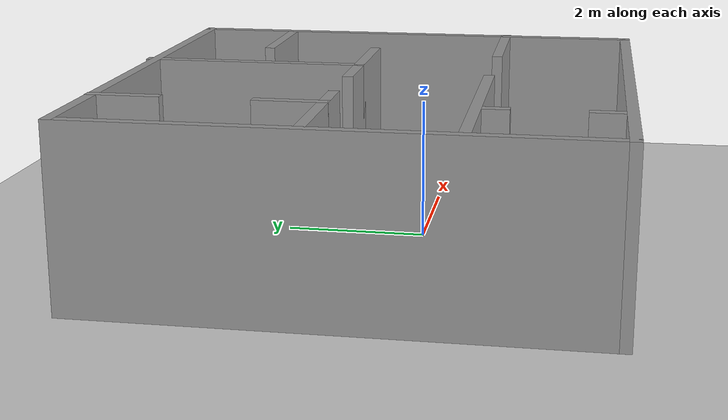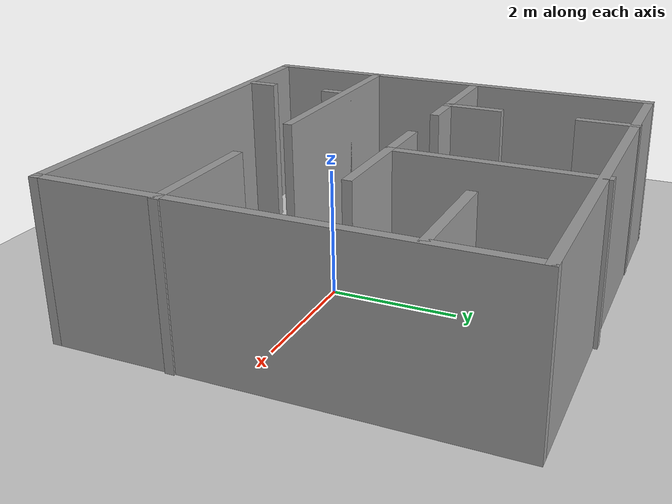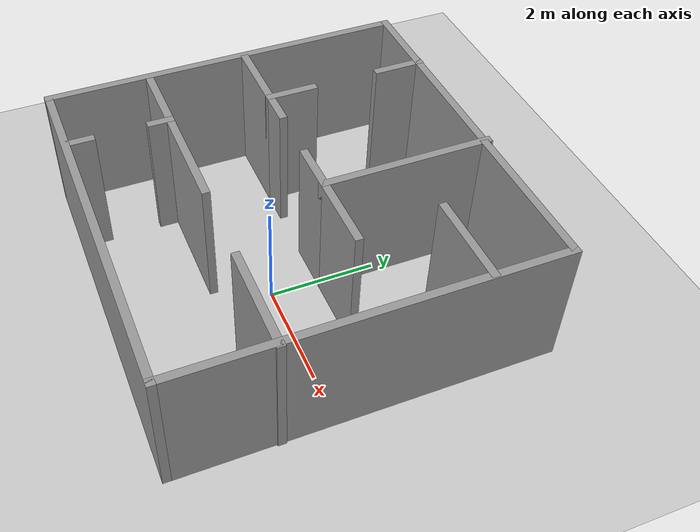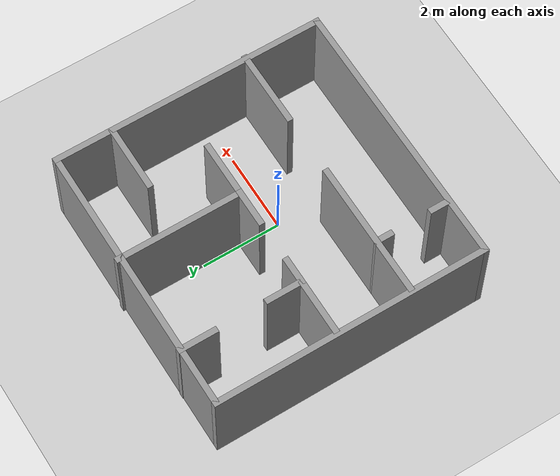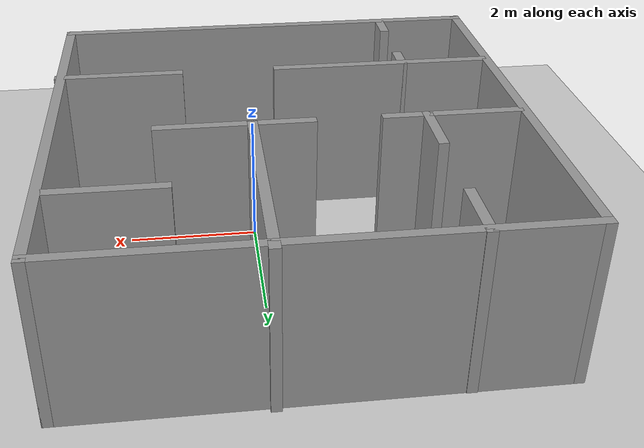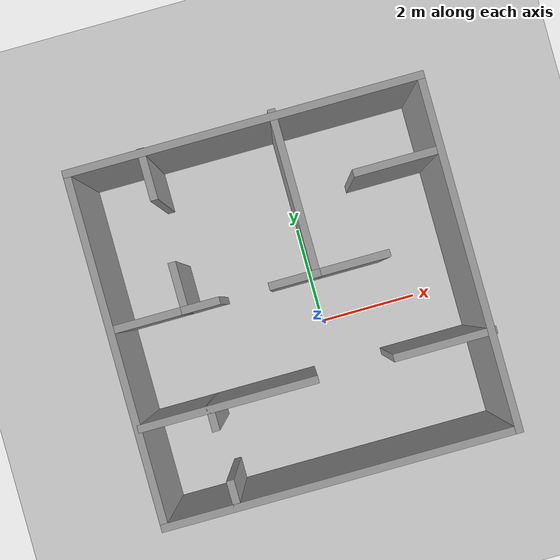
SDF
<sdf version="1.7">
 <world name="default">
  <light name="sun" type="directional">
   <pose>0 0 10 0 -0 0</pose>
   <diffuse>0.8 0.8 0.8 1</diffuse>
   <specular>0.2 0.2 0.2 1</specular>
   <attenuation>
    <range>1000</range>
    <constant>0.9</constant>
    <linear>0.01</linear>
    <quadratic>0.001</quadratic>
   </attenuation>
   <direction>-0.5 0.1 -0.9</direction>
   <spot><inner_angle>0</inner_angle><outer_angle>0</outer_angle><falloff>0</falloff></spot>
  </light>
  <model name="ground_plane">
   <static>1</static>
   <link name="link">
    <collision name="collision">
     <geometry><plane><normal>0 0 1</normal><size>100 100</size></plane></geometry>
     <surface>
      <contact><collide_bitmask>65535</collide_bitmask></contact>
      <friction><ode><mu>100</mu><mu2>50</mu2></ode></friction>
     </surface>
    </collision>
    <visual name="visual">
     <cast_shadows>0</cast_shadows>
     <geometry><plane><normal>0 0 1</normal><size>100 100</size></plane></geometry>
     <material>
      <script><uri>file://media/materials/scripts/gazebo.material</uri><name>Gazebo/Grey</name></script>
     </material>
    </visual>
   </link>
  </model>
  <gravity>0 0 -9.8</gravity>
  <magnetic_field>6e-06 2.3e-05 -4.2e-05</magnetic_field>
  <atmosphere type="adiabatic"/>
  <physics type="ode">
   <max_step_size>0.001</max_step_size>
   <real_time_factor>1</real_time_factor>
   <real_time_update_rate>1000</real_time_update_rate>
  </physics>
  <scene><ambient>0.4 0.4 0.4 1</ambient><background>0.7 0.7 0.7 1</background><shadows>1</shadows></scene>
  <spherical_coordinates>
   <surface_model>EARTH_WGS84</surface_model>
   <latitude_deg>0</latitude_deg>
   <longitude_deg>0</longitude_deg>
   <elevation>0</elevation>
   <heading_deg>0</heading_deg>
  </spherical_coordinates>
  <model name="maze8">
   <pose>-0.489709 0.59488 0 0 -0 0</pose>
   <link name="Wall_0">
    <collision name="Wall_0_Collision">
     <geometry><box><size>7 0.15 2.5</size></box></geometry>
     <pose>0 0 1.25 0 -0 0</pose>
    </collision>
    <visual name="Wall_0_Visual">
     <pose>0 0 1.25 0 -0 0</pose>
     <geometry><box><size>7 0.15 2.5</size></box></geometry>
     <material>
      <script><uri>file://media/materials/scripts/gazebo.material</uri><name>Gazebo/Grey</name></script>
      <ambient>1 1 1 1</ambient>
     </material>
     <meta><layer>0</layer></meta>
    </visual>
    <pose>-0.013968 3.39435 0 0 -0 0</pose>
   </link>
   <link name="Wall_1">
    <collision name="Wall_1_Collision">
     <geometry><box><size>7 0.15 2.5</size></box></geometry>
     <pose>0 0 1.25 0 -0 0</pose>
    </collision>
    <visual name="Wall_1_Visual">
     <pose>0 0 1.25 0 -0 0</pose>
     <geometry><box><size>7 0.15 2.5</size></box></geometry>
     <material>
      <script><uri>file://media/materials/scripts/gazebo.material</uri><name>Gazebo/Grey</name></script>
      <ambient>1 1 1 1</ambient>
     </material>
     <meta><layer>0</layer></meta>
    </visual>
    <pose>3.41103 -0.030649 0 0 -0 -1.5708</pose>
   </link>
   <link name="Wall_11">
    <collision name="Wall_11_Collision">
     <geometry><box><size>0.75 0.15 2.5</size></box></geometry>
     <pose>0 0 1.25 0 -0 0</pose>
    </collision>
    <visual name="Wall_11_Visual">
     <pose>0 0 1.25 0 -0 0</pose>
     <geometry><box><size>0.75 0.15 2.5</size></box></geometry>
     <material>
      <script><uri>file://media/materials/scripts/gazebo.material</uri><name>Gazebo/Grey</name></script>
      <ambient>1 1 1 1</ambient>
     </material>
     <meta><layer>0</layer></meta>
    </visual>
    <pose>-1.69092 0.355649 0 0 -0 0</pose>
   </link>
   <link name="Wall_13">
    <collision name="Wall_13_Collision">
     <geometry><box><size>1 0.15 2.5</size></box></geometry>
     <pose>0 0 1.25 0 -0 0</pose>
    </collision>
    <visual name="Wall_13_Visual">
     <pose>0 0 1.25 0 -0 0</pose>
     <geometry><box><size>1 0.15 2.5</size></box></geometry>
     <material>
      <script><uri>file://media/materials/scripts/gazebo.material</uri><name>Gazebo/Grey</name></script>
      <ambient>1 1 1 1</ambient>
     </material>
     <meta><layer>0</layer></meta>
    </visual>
    <pose>0.134082 0.355649 0 0 -0 0</pose>
   </link>
   <link name="Wall_14">
    <collision name="Wall_14_Collision">
     <geometry><box><size>3.25 0.15 2.5</size></box></geometry>
     <pose>0 0 1.25 0 -0 0</pose>
    </collision>
    <visual name="Wall_14_Visual">
     <pose>0 0 1.25 0 -0 0</pose>
     <geometry><box><size>3.25 0.15 2.5</size></box></geometry>
     <material>
      <script><uri>file://media/materials/scripts/gazebo.material</uri><name>Gazebo/Grey</name></script>
      <ambient>1 1 1 1</ambient>
     </material>
     <meta><layer>0</layer></meta>
    </visual>
    <pose>0.559082 1.90565 0 0 -0 1.5708</pose>
   </link>
   <link name="Wall_16">
    <collision name="Wall_16_Collision">
     <geometry><box><size>1.5 0.15 2.5</size></box></geometry>
     <pose>0 0 1.25 0 -0 0</pose>
    </collision>
    <visual name="Wall_16_Visual">
     <pose>0 0 1.25 0 -0 0</pose>
     <geometry><box><size>1.5 0.15 2.5</size></box></geometry>
     <material>
      <script><uri>file://media/materials/scripts/gazebo.material</uri><name>Gazebo/Grey</name></script>
      <ambient>1 1 1 1</ambient>
     </material>
     <meta><layer>0</layer></meta>
    </visual>
    <pose>1.23408 0.355649 0 0 -0 0</pose>
   </link>
   <link name="Wall_19">
    <collision name="Wall_19_Collision">
     <geometry><box><size>1.75 0.15 2.5</size></box></geometry>
     <pose>0 0 1.25 0 -0 0</pose>
    </collision>
    <visual name="Wall_19_Visual">
     <pose>0 0 1.25 0 -0 0</pose>
     <geometry><box><size>1.75 0.15 2.5</size></box></geometry>
     <material>
      <script><uri>file://media/materials/scripts/gazebo.material</uri><name>Gazebo/Grey</name></script>
      <ambient>1 1 1 1</ambient>
     </material>
     <meta><layer>0</layer></meta>
    </visual>
    <pose>2.58804 1.96473 0 0 -0 0</pose>
   </link>
   <link name="Wall_2">
    <collision name="Wall_2_Collision">
     <geometry><box><size>7 0.15 2.5</size></box></geometry>
     <pose>0 0 1.25 0 -0 0</pose>
    </collision>
    <visual name="Wall_2_Visual">
     <pose>0 0 1.25 0 -0 0</pose>
     <geometry><box><size>7 0.15 2.5</size></box></geometry>
     <material>
      <script><uri>file://media/materials/scripts/gazebo.material</uri><name>Gazebo/Grey</name></script>
      <ambient>1 1 1 1</ambient>
     </material>
     <meta><layer>0</layer></meta>
    </visual>
    <pose>-0.013968 -3.45565 0 0 -0 3.14159</pose>
   </link>
   <link name="Wall_22">
    <collision name="Wall_22_Collision">
     <geometry><box><size>3.5 0.15 2.5</size></box></geometry>
     <pose>0 0 1.25 0 -0 0</pose>
    </collision>
    <visual name="Wall_22_Visual">
     <pose>0 0 1.25 0 -0 0</pose>
     <geometry><box><size>3.5 0.15 2.5</size></box></geometry>
     <material>
      <script><uri>file://media/materials/scripts/gazebo.material</uri><name>Gazebo/Grey</name></script>
      <ambient>1 1 1 1</ambient>
     </material>
     <meta><layer>0</layer></meta>
    </visual>
    <pose>-1.68603 -1.55514 0 0 -0 0</pose>
   </link>
   <link name="Wall_24">
    <collision name="Wall_24_Collision">
     <geometry><box><size>2 0.15 2.5</size></box></geometry>
     <pose>0 0 1.25 0 -0 0</pose>
    </collision>
    <visual name="Wall_24_Visual">
     <pose>0 0 1.25 0 -0 0</pose>
     <geometry><box><size>2 0.15 2.5</size></box></geometry>
     <material>
      <script><uri>file://media/materials/scripts/gazebo.material</uri><name>Gazebo/Grey</name></script>
      <ambient>1 1 1 1</ambient>
     </material>
     <meta><layer>0</layer></meta>
    </visual>
    <pose>2.51397 -1.55514 0 0 -0 0</pose>
   </link>
   <link name="Wall_27">
    <collision name="Wall_27_Collision">
     <geometry><box><size>0.5 0.15 2.5</size></box></geometry>
     <pose>0 0 1.25 0 -0 0</pose>
    </collision>
    <visual name="Wall_27_Visual">
     <pose>0 0 1.25 0 -0 0</pose>
     <geometry><box><size>0.5 0.15 2.5</size></box></geometry>
     <material>
      <script><uri>file://media/materials/scripts/gazebo.material</uri><name>Gazebo/Grey</name></script>
      <ambient>1 1 1 1</ambient>
     </material>
     <meta><layer>0</layer></meta>
    </visual>
    <pose>-2.03354 -1.73014 0 0 -0 -1.5708</pose>
   </link>
   <link name="Wall_3">
    <collision name="Wall_3_Collision">
     <geometry><box><size>7 0.15 2.5</size></box></geometry>
     <pose>0 0 1.25 0 -0 0</pose>
    </collision>
    <visual name="Wall_3_Visual">
     <pose>0 0 1.25 0 -0 0</pose>
     <geometry><box><size>7 0.15 2.5</size></box></geometry>
     <material>
      <script><uri>file://media/materials/scripts/gazebo.material</uri><name>Gazebo/Grey</name></script>
      <ambient>1 1 1 1</ambient>
     </material>
     <meta><layer>0</layer></meta>
    </visual>
    <pose>-3.43897 -0.030649 0 0 -0 1.5708</pose>
   </link>
   <link name="Wall_30">
    <collision name="Wall_30_Collision">
     <geometry><box><size>0.5 0.15 2.5</size></box></geometry>
     <pose>0 0 1.25 0 -0 0</pose>
    </collision>
    <visual name="Wall_30_Visual">
     <pose>0 0 1.25 0 -0 0</pose>
     <geometry><box><size>0.5 0.15 2.5</size></box></geometry>
     <material>
      <script><uri>file://media/materials/scripts/gazebo.material</uri><name>Gazebo/Grey</name></script>
      <ambient>1 1 1 1</ambient>
     </material>
     <meta><layer>0</layer></meta>
    </visual>
    <pose>-2.03354 -3.18014 0 0 -0 -1.5708</pose>
   </link>
   <link name="Wall_6">
    <collision name="Wall_6_Collision">
     <geometry><box><size>1.5 0.15 2.5</size></box></geometry>
     <pose>0 0 1.25 0 -0 0</pose>
    </collision>
    <visual name="Wall_6_Visual">
     <pose>0 0 1.25 0 -0 0</pose>
     <geometry><box><size>1.5 0.15 2.5</size></box></geometry>
     <material>
      <script><uri>file://media/materials/scripts/gazebo.material</uri><name>Gazebo/Grey</name></script>
      <ambient>1 1 1 1</ambient>
     </material>
     <meta><layer>0</layer></meta>
    </visual>
    <pose>-2.66592 0.355649 0 0 -0 0</pose>
   </link>
   <link name="Wall_7">
    <collision name="Wall_7_Collision">
     <geometry><box><size>1 0.15 2.5</size></box></geometry>
     <pose>0 0 1.25 0 -0 0</pose>
    </collision>
    <visual name="Wall_7_Visual">
     <pose>0 0 1.25 0 -0 0</pose>
     <geometry><box><size>1 0.15 2.5</size></box></geometry>
     <material>
      <script><uri>file://media/materials/scripts/gazebo.material</uri><name>Gazebo/Grey</name></script>
      <ambient>1 1 1 1</ambient>
     </material>
     <meta><layer>0</layer></meta>
    </visual>
    <pose>-1.99092 0.780649 0 0 -0 1.5708</pose>
   </link>
   <link name="Wall_9">
    <collision name="Wall_9_Collision">
     <geometry><box><size>1 0.15 2.5</size></box></geometry>
     <pose>0 0 1.25 0 -0 0</pose>
    </collision>
    <visual name="Wall_9_Visual">
     <pose>0 0 1.25 0 -0 0</pose>
     <geometry><box><size>1 0.15 2.5</size></box></geometry>
     <material>
      <script><uri>file://media/materials/scripts/gazebo.material</uri><name>Gazebo/Grey</name></script>
      <ambient>1 1 1 1</ambient>
     </material>
     <meta><layer>0</layer></meta>
    </visual>
    <pose>-1.99092 2.98065 0 0 -0 1.5708</pose>
   </link>
   <static>1</static>
  </model>
 </world>
</sdf>
